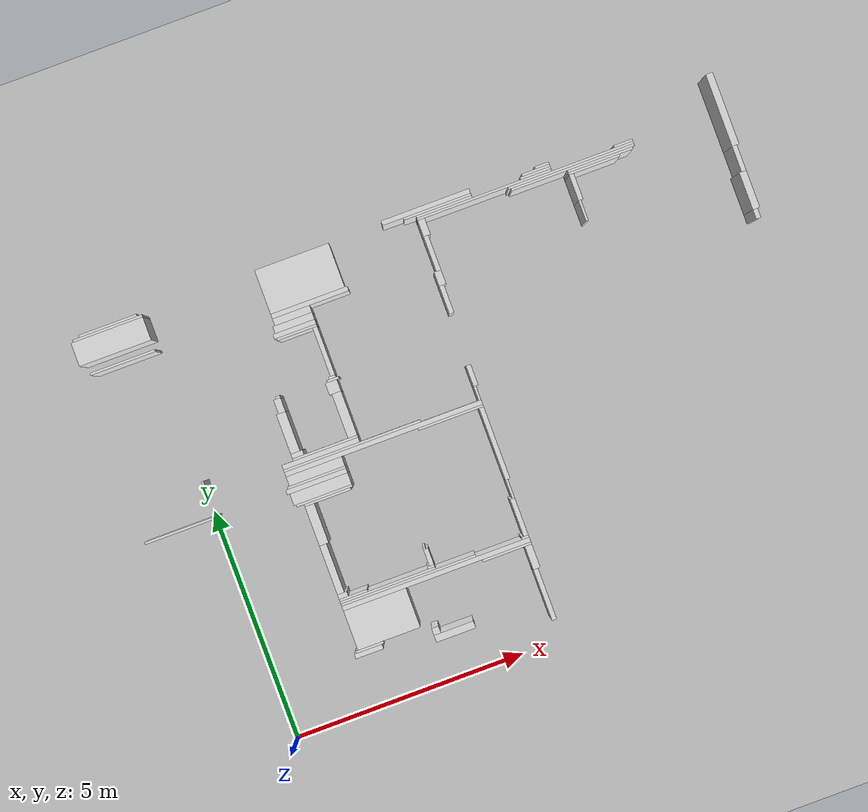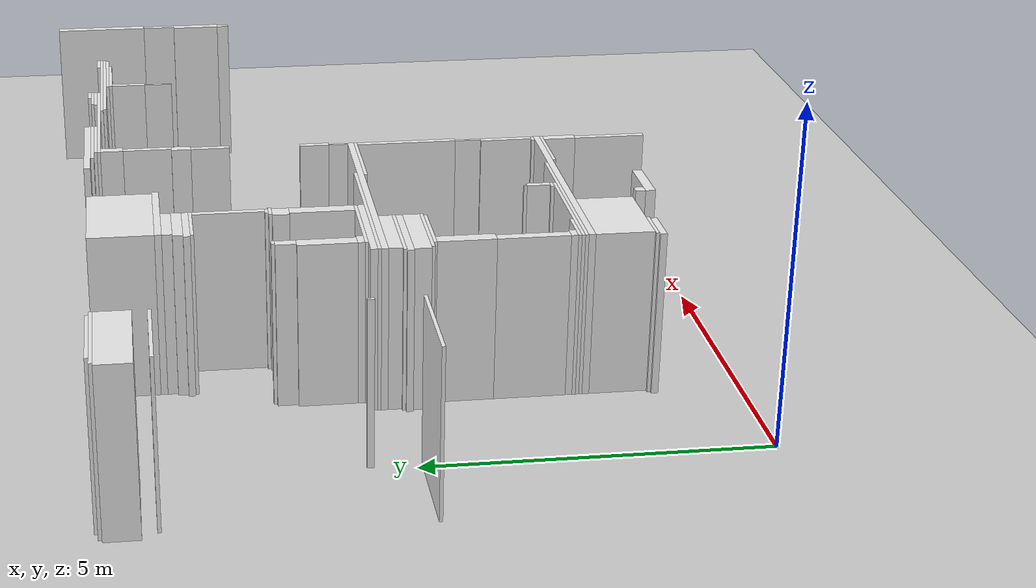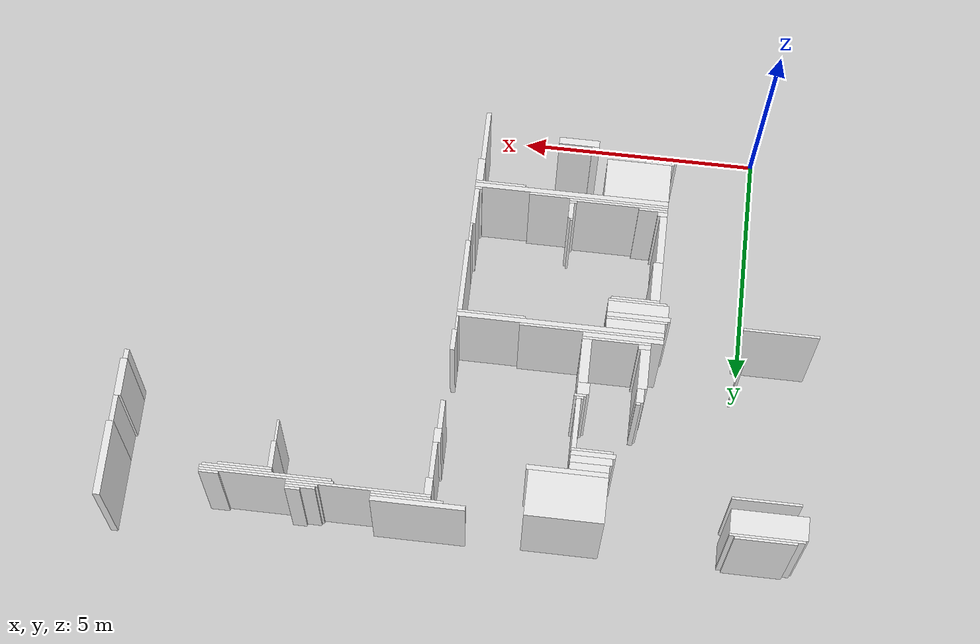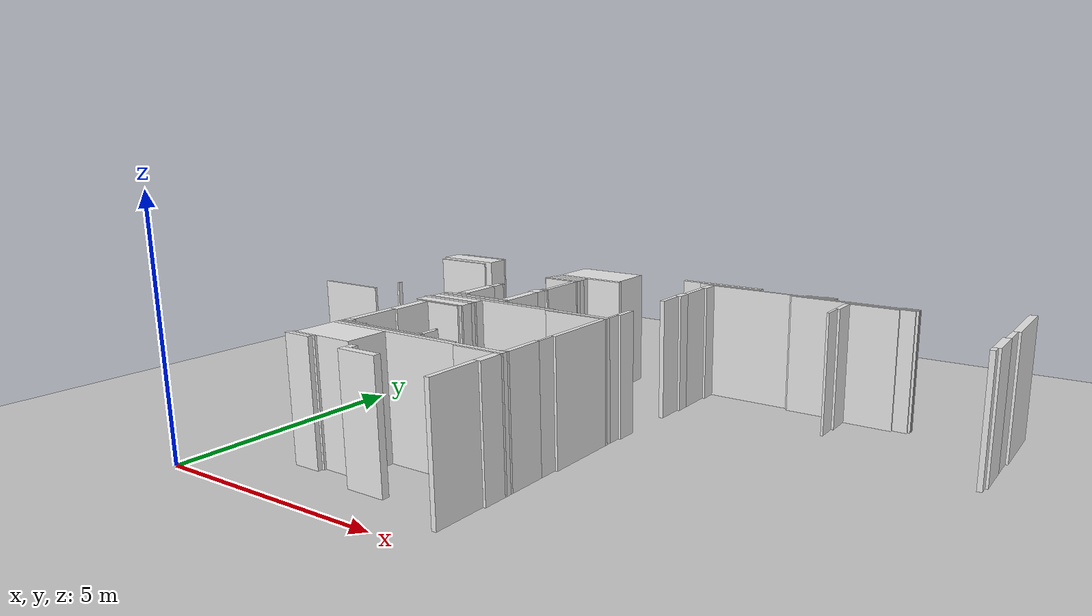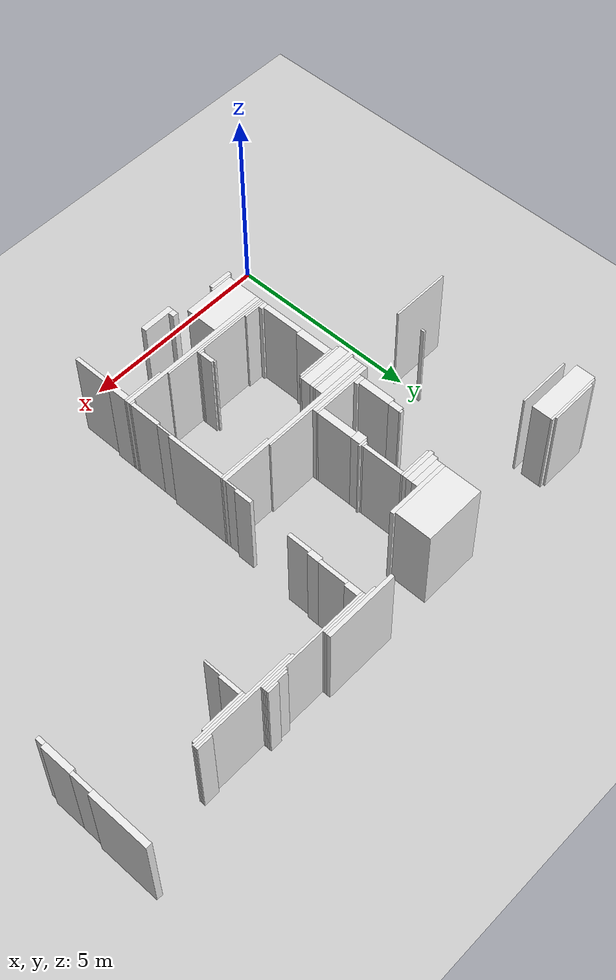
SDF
<sdf version="1.7">
 <world name="occupancy_map_world">
  <model name="ground_plane">
   <static>true</static>
   <link name="link">
    <collision name="collision">
     <geometry><plane><normal>0 0 1</normal><size>32.46 49.62000000000001</size></plane></geometry>
    </collision>
    <visual name="visual">
     <geometry><plane><normal>0 0 1</normal><size>32.46 49.62000000000001</size></plane></geometry>
     <material>
      <script><uri>file://media/materials/scripts/gazebo.material</uri><name>Gazebo/Grey</name></script>
     </material>
    </visual>
   </link>
  </model>
  <model name="wall_258">
   <static>true</static>
   <pose>12.600000000000001 9.100000000000001 1.25 0 0 0.0</pose>
   <link name="link">
    <collision name="collision">
     <geometry><box><size>0.15000000000000002 1.55 2.5</size></box></geometry>
    </collision>
    <visual name="visual">
     <geometry><box><size>0.15000000000000002 1.55 2.5</size></box></geometry>
     <material>
      <script><uri>file://media/materials/scripts/gazebo.material</uri><name>Gazebo/White</name></script>
     </material>
    </visual>
   </link>
  </model>
  <model name="wall_276">
   <static>true</static>
   <pose>6.275000000000002 9.325000000000003 1.25 0 0 0.0</pose>
   <link name="link">
    <collision name="collision">
     <geometry><box><size>1.9000000000000001 0.1 2.5</size></box></geometry>
    </collision>
    <visual name="visual">
     <geometry><box><size>1.9000000000000001 0.1 2.5</size></box></geometry>
     <material>
      <script><uri>file://media/materials/scripts/gazebo.material</uri><name>Gazebo/White</name></script>
     </material>
    </visual>
   </link>
  </model>
  <model name="wall_277">
   <static>true</static>
   <pose>-0.5999999999999979 9.3 1.25 0 0 0.0</pose>
   <link name="link">
    <collision name="collision"><geometry><box><size>1.25 0.05 2.5</size></box></geometry></collision>
    <visual name="visual">
     <geometry><box><size>1.25 0.05 2.5</size></box></geometry>
     <material>
      <script><uri>file://media/materials/scripts/gazebo.material</uri><name>Gazebo/White</name></script>
     </material>
    </visual>
   </link>
  </model>
  <model name="wall_278">
   <static>true</static>
   <pose>3.3750000000000036 8.850000000000001 1.25 0 0 0.0</pose>
   <link name="link">
    <collision name="collision">
     <geometry><box><size>1.6 0.9500000000000001 2.5</size></box></geometry>
    </collision>
    <visual name="visual">
     <geometry><box><size>1.6 0.9500000000000001 2.5</size></box></geometry>
     <material>
      <script><uri>file://media/materials/scripts/gazebo.material</uri><name>Gazebo/White</name></script>
     </material>
    </visual>
   </link>
  </model>
  <model name="wall_279">
   <static>true</static>
   <pose>8.775000000000002 9.3 1.25 0 0 0.0</pose>
   <link name="link">
    <collision name="collision">
     <geometry><box><size>0.30000000000000004 0.05 2.5</size></box></geometry>
    </collision>
    <visual name="visual">
     <geometry><box><size>0.30000000000000004 0.05 2.5</size></box></geometry>
     <material>
      <script><uri>file://media/materials/scripts/gazebo.material</uri><name>Gazebo/White</name></script>
     </material>
    </visual>
   </link>
  </model>
  <model name="wall_281">
   <static>true</static>
   <pose>-0.6249999999999964 9.25 1.25 0 0 0.0</pose>
   <link name="link">
    <collision name="collision"><geometry><box><size>1.5 0.05 2.5</size></box></geometry></collision>
    <visual name="visual">
     <geometry><box><size>1.5 0.05 2.5</size></box></geometry>
     <material>
      <script><uri>file://media/materials/scripts/gazebo.material</uri><name>Gazebo/White</name></script>
     </material>
    </visual>
   </link>
  </model>
  <model name="wall_282">
   <static>true</static>
   <pose>6.5000000000000036 9.25 1.25 0 0 0.0</pose>
   <link name="link">
    <collision name="collision">
     <geometry><box><size>1.4500000000000002 0.05 2.5</size></box></geometry>
    </collision>
    <visual name="visual">
     <geometry><box><size>1.4500000000000002 0.05 2.5</size></box></geometry>
     <material>
      <script><uri>file://media/materials/scripts/gazebo.material</uri><name>Gazebo/White</name></script>
     </material>
    </visual>
   </link>
  </model>
  <model name="wall_283">
   <static>true</static>
   <pose>8.625000000000004 9.25 1.25 0 0 0.0</pose>
   <link name="link">
    <collision name="collision">
     <geometry><box><size>0.6000000000000001 0.05 2.5</size></box></geometry>
    </collision>
    <visual name="visual">
     <geometry><box><size>0.6000000000000001 0.05 2.5</size></box></geometry>
     <material>
      <script><uri>file://media/materials/scripts/gazebo.material</uri><name>Gazebo/White</name></script>
     </material>
    </visual>
   </link>
  </model>
  <model name="wall_284">
   <static>true</static>
   <pose>-0.6499999999999986 8.975000000000001 1.25 0 0 0.0</pose>
   <link name="link">
    <collision name="collision"><geometry><box><size>1.55 0.5 2.5</size></box></geometry></collision>
    <visual name="visual">
     <geometry><box><size>1.55 0.5 2.5</size></box></geometry>
     <material>
      <script><uri>file://media/materials/scripts/gazebo.material</uri><name>Gazebo/White</name></script>
     </material>
    </visual>
   </link>
  </model>
  <model name="wall_285">
   <static>true</static>
   <pose>-0.6499999999999986 4.900000000000002 1.25 0 0 0.0</pose>
   <link name="link">
    <collision name="collision"><geometry><box><size>1.55 0.05 2.5</size></box></geometry></collision>
    <visual name="visual">
     <geometry><box><size>1.55 0.05 2.5</size></box></geometry>
     <material>
      <script><uri>file://media/materials/scripts/gazebo.material</uri><name>Gazebo/White</name></script>
     </material>
    </visual>
   </link>
  </model>
  <model name="wall_286">
   <static>true</static>
   <pose>6.6250000000000036 9.200000000000003 1.25 0 0 0.0</pose>
   <link name="link">
    <collision name="collision">
     <geometry><box><size>1.2000000000000002 0.05 2.5</size></box></geometry>
    </collision>
    <visual name="visual">
     <geometry><box><size>1.2000000000000002 0.05 2.5</size></box></geometry>
     <material>
      <script><uri>file://media/materials/scripts/gazebo.material</uri><name>Gazebo/White</name></script>
     </material>
    </visual>
   </link>
  </model>
  <model name="wall_287">
   <static>true</static>
   <pose>8.600000000000001 9.200000000000003 1.25 0 0 0.0</pose>
   <link name="link">
    <collision name="collision"><geometry><box><size>0.65 0.05 2.5</size></box></geometry></collision>
    <visual name="visual">
     <geometry><box><size>0.65 0.05 2.5</size></box></geometry>
     <material>
      <script><uri>file://media/materials/scripts/gazebo.material</uri><name>Gazebo/White</name></script>
     </material>
    </visual>
   </link>
  </model>
  <model name="wall_288">
   <static>true</static>
   <pose>7.475000000000001 9.150000000000002 1.25 0 0 0.0</pose>
   <link name="link">
    <collision name="collision">
     <geometry><box><size>2.9000000000000004 0.05 2.5</size></box></geometry>
    </collision>
    <visual name="visual">
     <geometry><box><size>2.9000000000000004 0.05 2.5</size></box></geometry>
     <material>
      <script><uri>file://media/materials/scripts/gazebo.material</uri><name>Gazebo/White</name></script>
     </material>
    </visual>
   </link>
  </model>
  <model name="wall_289">
   <static>true</static>
   <pose>10.475000000000001 9.150000000000002 1.25 0 0 0.0</pose>
   <link name="link">
    <collision name="collision"><geometry><box><size>0.4 0.05 2.5</size></box></geometry></collision>
    <visual name="visual">
     <geometry><box><size>0.4 0.05 2.5</size></box></geometry>
     <material>
      <script><uri>file://media/materials/scripts/gazebo.material</uri><name>Gazebo/White</name></script>
     </material>
    </visual>
   </link>
  </model>
  <model name="wall_290">
   <static>true</static>
   <pose>6.100000000000001 8.950000000000003 1.25 0 0 0.0</pose>
   <link name="link">
    <collision name="collision">
     <geometry><box><size>0.15000000000000002 0.35000000000000003 2.5</size></box></geometry>
    </collision>
    <visual name="visual">
     <geometry><box><size>0.15000000000000002 0.35000000000000003 2.5</size></box></geometry>
     <material>
      <script><uri>file://media/materials/scripts/gazebo.material</uri><name>Gazebo/White</name></script>
     </material>
    </visual>
   </link>
  </model>
  <model name="wall_291">
   <static>true</static>
   <pose>9.325000000000003 9.100000000000001 1.25 0 0 0.0</pose>
   <link name="link">
    <collision name="collision"><geometry><box><size>2.7 0.05 2.5</size></box></geometry></collision>
    <visual name="visual">
     <geometry><box><size>2.7 0.05 2.5</size></box></geometry>
     <material>
      <script><uri>file://media/materials/scripts/gazebo.material</uri><name>Gazebo/White</name></script>
     </material>
    </visual>
   </link>
  </model>
  <model name="wall_292">
   <static>true</static>
   <pose>9.350000000000001 9.05 1.25 0 0 0.0</pose>
   <link name="link">
    <collision name="collision">
     <geometry><box><size>2.6500000000000004 0.05 2.5</size></box></geometry>
    </collision>
    <visual name="visual">
     <geometry><box><size>2.6500000000000004 0.05 2.5</size></box></geometry>
     <material>
      <script><uri>file://media/materials/scripts/gazebo.material</uri><name>Gazebo/White</name></script>
     </material>
    </visual>
   </link>
  </model>
  <model name="wall_293">
   <static>true</static>
   <pose>9.925000000000004 9.0 1.25 0 0 0.0</pose>
   <link name="link">
    <collision name="collision">
     <geometry><box><size>1.4000000000000001 0.05 2.5</size></box></geometry>
    </collision>
    <visual name="visual">
     <geometry><box><size>1.4000000000000001 0.05 2.5</size></box></geometry>
     <material>
      <script><uri>file://media/materials/scripts/gazebo.material</uri><name>Gazebo/White</name></script>
     </material>
    </visual>
   </link>
  </model>
  <model name="wall_294">
   <static>true</static>
   <pose>9.775000000000002 8.950000000000003 1.25 0 0 0.0</pose>
   <link name="link">
    <collision name="collision"><geometry><box><size>1.1 0.05 2.5</size></box></geometry></collision>
    <visual name="visual">
     <geometry><box><size>1.1 0.05 2.5</size></box></geometry>
     <material>
      <script><uri>file://media/materials/scripts/gazebo.material</uri><name>Gazebo/White</name></script>
     </material>
    </visual>
   </link>
  </model>
  <model name="wall_295">
   <static>true</static>
   <pose>9.275000000000002 8.650000000000002 1.25 0 0 0.0</pose>
   <link name="link">
    <collision name="collision"><geometry><box><size>0.1 0.55 2.5</size></box></geometry></collision>
    <visual name="visual">
     <geometry><box><size>0.1 0.55 2.5</size></box></geometry>
     <material>
      <script><uri>file://media/materials/scripts/gazebo.material</uri><name>Gazebo/White</name></script>
     </material>
    </visual>
   </link>
  </model>
  <model name="wall_296">
   <static>true</static>
   <pose>6.075000000000003 8.400000000000002 1.25 0 0 0.0</pose>
   <link name="link">
    <collision name="collision"><geometry><box><size>0.1 0.75 2.5</size></box></geometry></collision>
    <visual name="visual">
     <geometry><box><size>0.1 0.75 2.5</size></box></geometry>
     <material>
      <script><uri>file://media/materials/scripts/gazebo.material</uri><name>Gazebo/White</name></script>
     </material>
    </visual>
   </link>
  </model>
  <model name="wall_300">
   <static>true</static>
   <pose>-0.5749999999999993 8.5 1.25 0 0 0.0</pose>
   <link name="link">
    <collision name="collision">
     <geometry><box><size>1.4000000000000001 0.05 2.5</size></box></geometry>
    </collision>
    <visual name="visual">
     <geometry><box><size>1.4000000000000001 0.05 2.5</size></box></geometry>
     <material>
      <script><uri>file://media/materials/scripts/gazebo.material</uri><name>Gazebo/White</name></script>
     </material>
    </visual>
   </link>
  </model>
  <model name="wall_302">
   <static>true</static>
   <pose>3.400000000000002 8.325000000000003 1.25 0 0 0.0</pose>
   <link name="link">
    <collision name="collision">
     <geometry><box><size>1.6500000000000001 0.1 2.5</size></box></geometry>
    </collision>
    <visual name="visual">
     <geometry><box><size>1.6500000000000001 0.1 2.5</size></box></geometry>
     <material>
      <script><uri>file://media/materials/scripts/gazebo.material</uri><name>Gazebo/White</name></script>
     </material>
    </visual>
   </link>
  </model>
  <model name="wall_303">
   <static>true</static>
   <pose>9.250000000000004 8.150000000000002 1.25 0 0 0.0</pose>
   <link name="link">
    <collision name="collision"><geometry><box><size>0.05 0.45 2.5</size></box></geometry></collision>
    <visual name="visual">
     <geometry><box><size>0.05 0.45 2.5</size></box></geometry>
     <material>
      <script><uri>file://media/materials/scripts/gazebo.material</uri><name>Gazebo/White</name></script>
     </material>
    </visual>
   </link>
  </model>
  <model name="wall_304">
   <static>true</static>
   <pose>12.575000000000003 8.05 1.25 0 0 0.0</pose>
   <link name="link">
    <collision name="collision"><geometry><box><size>0.1 0.55 2.5</size></box></geometry></collision>
    <visual name="visual">
     <geometry><box><size>0.1 0.55 2.5</size></box></geometry>
     <material>
      <script><uri>file://media/materials/scripts/gazebo.material</uri><name>Gazebo/White</name></script>
     </material>
    </visual>
   </link>
  </model>
  <model name="wall_305">
   <static>true</static>
   <pose>2.9750000000000014 8.200000000000003 1.25 0 0 0.0</pose>
   <link name="link">
    <collision name="collision">
     <geometry><box><size>0.8 0.15000000000000002 2.5</size></box></geometry>
    </collision>
    <visual name="visual">
     <geometry><box><size>0.8 0.15000000000000002 2.5</size></box></geometry>
     <material>
      <script><uri>file://media/materials/scripts/gazebo.material</uri><name>Gazebo/White</name></script>
     </material>
    </visual>
   </link>
  </model>
  <model name="wall_306">
   <static>true</static>
   <pose>2.950000000000003 8.05 1.25 0 0 0.0</pose>
   <link name="link">
    <collision name="collision">
     <geometry><box><size>0.8500000000000001 0.15000000000000002 2.5</size></box></geometry>
    </collision>
    <visual name="visual">
     <geometry><box><size>0.8500000000000001 0.15000000000000002 2.5</size></box></geometry>
     <material>
      <script><uri>file://media/materials/scripts/gazebo.material</uri><name>Gazebo/White</name></script>
     </material>
    </visual>
   </link>
  </model>
  <model name="wall_307">
   <static>true</static>
   <pose>2.950000000000003 7.850000000000001 1.25 0 0 0.0</pose>
   <link name="link">
    <collision name="collision">
     <geometry><box><size>0.8500000000000001 0.05 2.5</size></box></geometry>
    </collision>
    <visual name="visual">
     <geometry><box><size>0.8500000000000001 0.05 2.5</size></box></geometry>
     <material>
      <script><uri>file://media/materials/scripts/gazebo.material</uri><name>Gazebo/White</name></script>
     </material>
    </visual>
   </link>
  </model>
  <model name="wall_310">
   <static>true</static>
   <pose>6.050000000000004 7.875 1.25 0 0 0.0</pose>
   <link name="link">
    <collision name="collision">
     <geometry><box><size>0.15000000000000002 0.30000000000000004 2.5</size></box></geometry>
    </collision>
    <visual name="visual">
     <geometry><box><size>0.15000000000000002 0.30000000000000004 2.5</size></box></geometry>
     <material>
      <script><uri>file://media/materials/scripts/gazebo.material</uri><name>Gazebo/White</name></script>
     </material>
    </visual>
   </link>
  </model>
  <model name="wall_312">
   <static>true</static>
   <pose>2.9250000000000043 7.925000000000001 1.25 0 0 0.0</pose>
   <link name="link">
    <collision name="collision"><geometry><box><size>0.9 0.1 2.5</size></box></geometry></collision>
    <visual name="visual">
     <geometry><box><size>0.9 0.1 2.5</size></box></geometry>
     <material>
      <script><uri>file://media/materials/scripts/gazebo.material</uri><name>Gazebo/White</name></script>
     </material>
    </visual>
   </link>
  </model>
  <model name="wall_316">
   <static>true</static>
   <pose>3.325000000000003 7.300000000000001 1.25 0 0 0.0</pose>
   <link name="link">
    <collision name="collision"><geometry><box><size>0.1 1.05 2.5</size></box></geometry></collision>
    <visual name="visual">
     <geometry><box><size>0.1 1.05 2.5</size></box></geometry>
     <material>
      <script><uri>file://media/materials/scripts/gazebo.material</uri><name>Gazebo/White</name></script>
     </material>
    </visual>
   </link>
  </model>
  <model name="wall_318">
   <static>true</static>
   <pose>12.550000000000004 7.375 1.25 0 0 0.0</pose>
   <link name="link">
    <collision name="collision">
     <geometry><box><size>0.15000000000000002 0.8 2.5</size></box></geometry>
    </collision>
    <visual name="visual">
     <geometry><box><size>0.15000000000000002 0.8 2.5</size></box></geometry>
     <material>
      <script><uri>file://media/materials/scripts/gazebo.material</uri><name>Gazebo/White</name></script>
     </material>
    </visual>
   </link>
  </model>
  <model name="wall_320">
   <static>true</static>
   <pose>6.025000000000002 7.425000000000001 1.25 0 0 0.0</pose>
   <link name="link">
    <collision name="collision">
     <geometry><box><size>0.1 0.6000000000000001 2.5</size></box></geometry>
    </collision>
    <visual name="visual">
     <geometry><box><size>0.1 0.6000000000000001 2.5</size></box></geometry>
     <material>
      <script><uri>file://media/materials/scripts/gazebo.material</uri><name>Gazebo/White</name></script>
     </material>
    </visual>
   </link>
  </model>
  <model name="wall_321">
   <static>true</static>
   <pose>12.525000000000002 6.875 1.25 0 0 0.0</pose>
   <link name="link">
    <collision name="collision"><geometry><box><size>0.1 0.2 2.5</size></box></geometry></collision>
    <visual name="visual">
     <geometry><box><size>0.1 0.2 2.5</size></box></geometry>
     <material>
      <script><uri>file://media/materials/scripts/gazebo.material</uri><name>Gazebo/White</name></script>
     </material>
    </visual>
   </link>
  </model>
  <model name="wall_324">
   <static>true</static>
   <pose>2.1250000000000036 6.75 1.25 0 0 0.0</pose>
   <link name="link">
    <collision name="collision"><geometry><box><size>0.1 0.05 2.5</size></box></geometry></collision>
    <visual name="visual">
     <geometry><box><size>0.1 0.05 2.5</size></box></geometry>
     <material>
      <script><uri>file://media/materials/scripts/gazebo.material</uri><name>Gazebo/White</name></script>
     </material>
    </visual>
   </link>
  </model>
  <model name="wall_325">
   <static>true</static>
   <pose>3.3000000000000043 6.75 1.25 0 0 0.0</pose>
   <link name="link">
    <collision name="collision">
     <geometry><box><size>0.15000000000000002 0.05 2.5</size></box></geometry>
    </collision>
    <visual name="visual">
     <geometry><box><size>0.15000000000000002 0.05 2.5</size></box></geometry>
     <material>
      <script><uri>file://media/materials/scripts/gazebo.material</uri><name>Gazebo/White</name></script>
     </material>
    </visual>
   </link>
  </model>
  <model name="wall_326">
   <static>true</static>
   <pose>2.1000000000000014 6.575000000000003 1.25 0 0 0.0</pose>
   <link name="link">
    <collision name="collision">
     <geometry><box><size>0.15000000000000002 0.30000000000000004 2.5</size></box></geometry>
    </collision>
    <visual name="visual">
     <geometry><box><size>0.15000000000000002 0.30000000000000004 2.5</size></box></geometry>
     <material>
      <script><uri>file://media/materials/scripts/gazebo.material</uri><name>Gazebo/White</name></script>
     </material>
    </visual>
   </link>
  </model>
  <model name="wall_328">
   <static>true</static>
   <pose>3.3000000000000043 6.700000000000003 1.25 0 0 0.0</pose>
   <link name="link">
    <collision name="collision"><geometry><box><size>0.25 0.05 2.5</size></box></geometry></collision>
    <visual name="visual">
     <geometry><box><size>0.25 0.05 2.5</size></box></geometry>
     <material>
      <script><uri>file://media/materials/scripts/gazebo.material</uri><name>Gazebo/White</name></script>
     </material>
    </visual>
   </link>
  </model>
  <model name="wall_329">
   <static>true</static>
   <pose>3.2500000000000036 6.550000000000001 1.25 0 0 0.0</pose>
   <link name="link">
    <collision name="collision"><geometry><box><size>0.25 0.25 2.5</size></box></geometry></collision>
    <visual name="visual">
     <geometry><box><size>0.25 0.25 2.5</size></box></geometry>
     <material>
      <script><uri>file://media/materials/scripts/gazebo.material</uri><name>Gazebo/White</name></script>
     </material>
    </visual>
   </link>
  </model>
  <model name="wall_330">
   <static>true</static>
   <pose>2.075000000000003 6.0 1.25 0 0 0.0</pose>
   <link name="link">
    <collision name="collision">
     <geometry><box><size>0.2 0.8500000000000001 2.5</size></box></geometry>
    </collision>
    <visual name="visual">
     <geometry><box><size>0.2 0.8500000000000001 2.5</size></box></geometry>
     <material>
      <script><uri>file://media/materials/scripts/gazebo.material</uri><name>Gazebo/White</name></script>
     </material>
    </visual>
   </link>
  </model>
  <model name="wall_331">
   <static>true</static>
   <pose>3.275000000000002 5.950000000000003 1.25 0 0 0.0</pose>
   <link name="link">
    <collision name="collision">
     <geometry><box><size>0.2 0.9500000000000001 2.5</size></box></geometry>
    </collision>
    <visual name="visual">
     <geometry><box><size>0.2 0.9500000000000001 2.5</size></box></geometry>
     <material>
      <script><uri>file://media/materials/scripts/gazebo.material</uri><name>Gazebo/White</name></script>
     </material>
    </visual>
   </link>
  </model>
  <model name="wall_335">
   <static>true</static>
   <pose>5.975000000000001 5.800000000000001 1.25 0 0 0.0</pose>
   <link name="link">
    <collision name="collision"><geometry><box><size>0.1 0.45 2.5</size></box></geometry></collision>
    <visual name="visual">
     <geometry><box><size>0.1 0.45 2.5</size></box></geometry>
     <material>
      <script><uri>file://media/materials/scripts/gazebo.material</uri><name>Gazebo/White</name></script>
     </material>
    </visual>
   </link>
  </model>
  <model name="wall_341">
   <static>true</static>
   <pose>0.10000000000000142 5.625 1.25 0 0 0.0</pose>
   <link name="link">
    <collision name="collision"><geometry><box><size>0.05 0.1 2.5</size></box></geometry></collision>
    <visual name="visual">
     <geometry><box><size>0.05 0.1 2.5</size></box></geometry>
     <material>
      <script><uri>file://media/materials/scripts/gazebo.material</uri><name>Gazebo/White</name></script>
     </material>
    </visual>
   </link>
  </model>
  <model name="wall_345">
   <static>true</static>
   <pose>2.1000000000000014 5.525000000000002 1.25 0 0 0.0</pose>
   <link name="link">
    <collision name="collision"><geometry><box><size>0.25 0.1 2.5</size></box></geometry></collision>
    <visual name="visual">
     <geometry><box><size>0.25 0.1 2.5</size></box></geometry>
     <material>
      <script><uri>file://media/materials/scripts/gazebo.material</uri><name>Gazebo/White</name></script>
     </material>
    </visual>
   </link>
  </model>
  <model name="wall_347">
   <static>true</static>
   <pose>5.950000000000003 5.425000000000001 1.25 0 0 0.0</pose>
   <link name="link">
    <collision name="collision">
     <geometry><box><size>0.05 0.30000000000000004 2.5</size></box></geometry>
    </collision>
    <visual name="visual">
     <geometry><box><size>0.05 0.30000000000000004 2.5</size></box></geometry>
     <material>
      <script><uri>file://media/materials/scripts/gazebo.material</uri><name>Gazebo/White</name></script>
     </material>
    </visual>
   </link>
  </model>
  <model name="wall_348">
   <static>true</static>
   <pose>2.6750000000000043 5.450000000000003 1.25 0 0 0.0</pose>
   <link name="link">
    <collision name="collision">
     <geometry><box><size>1.4000000000000001 0.05 2.5</size></box></geometry>
    </collision>
    <visual name="visual">
     <geometry><box><size>1.4000000000000001 0.05 2.5</size></box></geometry>
     <material>
      <script><uri>file://media/materials/scripts/gazebo.material</uri><name>Gazebo/White</name></script>
     </material>
    </visual>
   </link>
  </model>
  <model name="wall_350">
   <static>true</static>
   <pose>2.5500000000000043 5.375 1.25 0 0 0.0</pose>
   <link name="link">
    <collision name="collision">
     <geometry><box><size>1.6500000000000001 0.1 2.5</size></box></geometry>
    </collision>
    <visual name="visual">
     <geometry><box><size>1.6500000000000001 0.1 2.5</size></box></geometry>
     <material>
      <script><uri>file://media/materials/scripts/gazebo.material</uri><name>Gazebo/White</name></script>
     </material>
    </visual>
   </link>
  </model>
  <model name="wall_352">
   <static>true</static>
   <pose>3.200000000000003 5.300000000000001 1.25 0 0 0.0</pose>
   <link name="link">
    <collision name="collision"><geometry><box><size>2.95 0.05 2.5</size></box></geometry></collision>
    <visual name="visual">
     <geometry><box><size>2.95 0.05 2.5</size></box></geometry>
     <material>
      <script><uri>file://media/materials/scripts/gazebo.material</uri><name>Gazebo/White</name></script>
     </material>
    </visual>
   </link>
  </model>
  <model name="wall_353">
   <static>true</static>
   <pose>3.8500000000000014 5.225000000000001 1.25 0 0 0.0</pose>
   <link name="link">
    <collision name="collision"><geometry><box><size>4.25 0.1 2.5</size></box></geometry></collision>
    <visual name="visual">
     <geometry><box><size>4.25 0.1 2.5</size></box></geometry>
     <material>
      <script><uri>file://media/materials/scripts/gazebo.material</uri><name>Gazebo/White</name></script>
     </material>
    </visual>
   </link>
  </model>
  <model name="wall_356">
   <static>true</static>
   <pose>2.325000000000003 5.075000000000003 1.25 0 0 0.0</pose>
   <link name="link">
    <collision name="collision">
     <geometry><box><size>1.2000000000000002 0.2 2.5</size></box></geometry>
    </collision>
    <visual name="visual">
     <geometry><box><size>1.2000000000000002 0.2 2.5</size></box></geometry>
     <material>
      <script><uri>file://media/materials/scripts/gazebo.material</uri><name>Gazebo/White</name></script>
     </material>
    </visual>
   </link>
  </model>
  <model name="wall_357">
   <static>true</static>
   <pose>2.325000000000003 4.550000000000001 1.25 0 0 0.0</pose>
   <link name="link">
    <collision name="collision">
     <geometry><box><size>1.2000000000000002 0.05 2.5</size></box></geometry>
    </collision>
    <visual name="visual">
     <geometry><box><size>1.2000000000000002 0.05 2.5</size></box></geometry>
     <material>
      <script><uri>file://media/materials/scripts/gazebo.material</uri><name>Gazebo/White</name></script>
     </material>
    </visual>
   </link>
  </model>
  <model name="wall_358">
   <static>true</static>
   <pose>5.275000000000002 5.150000000000002 1.25 0 0 0.0</pose>
   <link name="link">
    <collision name="collision">
     <geometry><box><size>1.4000000000000001 0.05 2.5</size></box></geometry>
    </collision>
    <visual name="visual">
     <geometry><box><size>1.4000000000000001 0.05 2.5</size></box></geometry>
     <material>
      <script><uri>file://media/materials/scripts/gazebo.material</uri><name>Gazebo/White</name></script>
     </material>
    </visual>
   </link>
  </model>
  <model name="wall_359">
   <static>true</static>
   <pose>5.925000000000004 4.350000000000001 1.25 0 0 0.0</pose>
   <link name="link">
    <collision name="collision"><geometry><box><size>0.1 1.55 2.5</size></box></geometry></collision>
    <visual name="visual">
     <geometry><box><size>0.1 1.55 2.5</size></box></geometry>
     <material>
      <script><uri>file://media/materials/scripts/gazebo.material</uri><name>Gazebo/White</name></script>
     </material>
    </visual>
   </link>
  </model>
  <model name="wall_362">
   <static>true</static>
   <pose>2.3000000000000043 4.950000000000003 1.25 0 0 0.0</pose>
   <link name="link">
    <collision name="collision"><geometry><box><size>1.25 0.05 2.5</size></box></geometry></collision>
    <visual name="visual">
     <geometry><box><size>1.25 0.05 2.5</size></box></geometry>
     <material>
      <script><uri>file://media/materials/scripts/gazebo.material</uri><name>Gazebo/White</name></script>
     </material>
    </visual>
   </link>
  </model>
  <model name="wall_363">
   <static>true</static>
   <pose>2.3000000000000043 4.700000000000003 1.25 0 0 0.0</pose>
   <link name="link">
    <collision name="collision"><geometry><box><size>1.25 0.25 2.5</size></box></geometry></collision>
    <visual name="visual">
     <geometry><box><size>1.25 0.25 2.5</size></box></geometry>
     <material>
      <script><uri>file://media/materials/scripts/gazebo.material</uri><name>Gazebo/White</name></script>
     </material>
    </visual>
   </link>
  </model>
  <model name="wall_364">
   <static>true</static>
   <pose>2.275000000000002 4.875 1.25 0 0 0.0</pose>
   <link name="link">
    <collision name="collision"><geometry><box><size>1.3 0.1 2.5</size></box></geometry></collision>
    <visual name="visual">
     <geometry><box><size>1.3 0.1 2.5</size></box></geometry>
     <material>
      <script><uri>file://media/materials/scripts/gazebo.material</uri><name>Gazebo/White</name></script>
     </material>
    </visual>
   </link>
  </model>
  <model name="wall_368">
   <static>true</static>
   <pose>2.3750000000000036 4.5 1.25 0 0 0.0</pose>
   <link name="link">
    <collision name="collision"><geometry><box><size>1.0 0.05 2.5</size></box></geometry></collision>
    <visual name="visual">
     <geometry><box><size>1.0 0.05 2.5</size></box></geometry>
     <material>
      <script><uri>file://media/materials/scripts/gazebo.material</uri><name>Gazebo/White</name></script>
     </material>
    </visual>
   </link>
  </model>
  <model name="wall_369">
   <static>true</static>
   <pose>1.9750000000000014 4.050000000000001 1.25 0 0 0.0</pose>
   <link name="link">
    <collision name="collision">
     <geometry><box><size>0.2 0.8500000000000001 2.5</size></box></geometry>
    </collision>
    <visual name="visual">
     <geometry><box><size>0.2 0.8500000000000001 2.5</size></box></geometry>
     <material>
      <script><uri>file://media/materials/scripts/gazebo.material</uri><name>Gazebo/White</name></script>
     </material>
    </visual>
   </link>
  </model>
  <model name="wall_370">
   <static>true</static>
   <pose>1.9750000000000014 2.525000000000002 1.25 0 0 0.0</pose>
   <link name="link">
    <collision name="collision"><geometry><box><size>0.2 0.1 2.5</size></box></geometry></collision>
    <visual name="visual">
     <geometry><box><size>0.2 0.1 2.5</size></box></geometry>
     <material>
      <script><uri>file://media/materials/scripts/gazebo.material</uri><name>Gazebo/White</name></script>
     </material>
    </visual>
   </link>
  </model>
  <model name="wall_374">
   <static>true</static>
   <pose>1.9500000000000028 3.1000000000000014 1.25 0 0 0.0</pose>
   <link name="link">
    <collision name="collision">
     <geometry><box><size>0.15000000000000002 1.05 2.5</size></box></geometry>
    </collision>
    <visual name="visual">
     <geometry><box><size>0.15000000000000002 1.05 2.5</size></box></geometry>
     <material>
      <script><uri>file://media/materials/scripts/gazebo.material</uri><name>Gazebo/White</name></script>
     </material>
    </visual>
   </link>
  </model>
  <model name="wall_375">
   <static>true</static>
   <pose>5.900000000000002 3.375 1.25 0 0 0.0</pose>
   <link name="link">
    <collision name="collision"><geometry><box><size>0.05 0.4 2.5</size></box></geometry></collision>
    <visual name="visual">
     <geometry><box><size>0.05 0.4 2.5</size></box></geometry>
     <material>
      <script><uri>file://media/materials/scripts/gazebo.material</uri><name>Gazebo/White</name></script>
     </material>
    </visual>
   </link>
  </model>
  <model name="wall_376">
   <static>true</static>
   <pose>5.8750000000000036 2.775000000000002 1.25 0 0 0.0</pose>
   <link name="link">
    <collision name="collision"><geometry><box><size>0.1 0.8 2.5</size></box></geometry></collision>
    <visual name="visual">
     <geometry><box><size>0.1 0.8 2.5</size></box></geometry>
     <material>
      <script><uri>file://media/materials/scripts/gazebo.material</uri><name>Gazebo/White</name></script>
     </material>
    </visual>
   </link>
  </model>
  <model name="wall_377">
   <static>true</static>
   <pose>3.8500000000000014 2.8500000000000014 1.25 0 0 0.0</pose>
   <link name="link">
    <collision name="collision"><geometry><box><size>0.05 0.05 2.5</size></box></geometry></collision>
    <visual name="visual">
     <geometry><box><size>0.05 0.05 2.5</size></box></geometry>
     <material>
      <script><uri>file://media/materials/scripts/gazebo.material</uri><name>Gazebo/White</name></script>
     </material>
    </visual>
   </link>
  </model>
  <model name="wall_378">
   <static>true</static>
   <pose>3.8750000000000036 2.650000000000002 1.25 0 0 0.0</pose>
   <link name="link">
    <collision name="collision">
     <geometry><box><size>0.1 0.35000000000000003 2.5</size></box></geometry>
    </collision>
    <visual name="visual">
     <geometry><box><size>0.1 0.35000000000000003 2.5</size></box></geometry>
     <material>
      <script><uri>file://media/materials/scripts/gazebo.material</uri><name>Gazebo/White</name></script>
     </material>
    </visual>
   </link>
  </model>
  <model name="wall_380">
   <static>true</static>
   <pose>2.1750000000000043 2.450000000000003 1.25 0 0 0.0</pose>
   <link name="link">
    <collision name="collision">
     <geometry><box><size>0.6000000000000001 0.05 2.5</size></box></geometry>
    </collision>
    <visual name="visual">
     <geometry><box><size>0.6000000000000001 0.05 2.5</size></box></geometry>
     <material>
      <script><uri>file://media/materials/scripts/gazebo.material</uri><name>Gazebo/White</name></script>
     </material>
    </visual>
   </link>
  </model>
  <model name="wall_381">
   <static>true</static>
   <pose>3.8500000000000014 2.450000000000003 1.25 0 0 0.0</pose>
   <link name="link">
    <collision name="collision">
     <geometry><box><size>0.15000000000000002 0.05 2.5</size></box></geometry>
    </collision>
    <visual name="visual">
     <geometry><box><size>0.15000000000000002 0.05 2.5</size></box></geometry>
     <material>
      <script><uri>file://media/materials/scripts/gazebo.material</uri><name>Gazebo/White</name></script>
     </material>
    </visual>
   </link>
  </model>
  <model name="wall_384">
   <static>true</static>
   <pose>2.900000000000002 2.400000000000002 1.25 0 0 0.0</pose>
   <link name="link">
    <collision name="collision">
     <geometry><box><size>2.0500000000000003 0.05 2.5</size></box></geometry>
    </collision>
    <visual name="visual">
     <geometry><box><size>2.0500000000000003 0.05 2.5</size></box></geometry>
     <material>
      <script><uri>file://media/materials/scripts/gazebo.material</uri><name>Gazebo/White</name></script>
     </material>
    </visual>
   </link>
  </model>
  <model name="wall_385">
   <static>true</static>
   <pose>3.325000000000003 2.3500000000000014 1.25 0 0 0.0</pose>
   <link name="link">
    <collision name="collision">
     <geometry><box><size>2.9000000000000004 0.05 2.5</size></box></geometry>
    </collision>
    <visual name="visual">
     <geometry><box><size>2.9000000000000004 0.05 2.5</size></box></geometry>
     <material>
      <script><uri>file://media/materials/scripts/gazebo.material</uri><name>Gazebo/White</name></script>
     </material>
    </visual>
   </link>
  </model>
  <model name="wall_386">
   <static>true</static>
   <pose>5.850000000000001 2.3500000000000014 1.25 0 0 0.0</pose>
   <link name="link">
    <collision name="collision">
     <geometry><box><size>0.15000000000000002 0.05 2.5</size></box></geometry>
    </collision>
    <visual name="visual">
     <geometry><box><size>0.15000000000000002 0.05 2.5</size></box></geometry>
     <material>
      <script><uri>file://media/materials/scripts/gazebo.material</uri><name>Gazebo/White</name></script>
     </material>
    </visual>
   </link>
  </model>
  <model name="wall_387">
   <static>true</static>
   <pose>5.850000000000001 1.9250000000000007 1.25 0 0 0.0</pose>
   <link name="link">
    <collision name="collision">
     <geometry><box><size>0.15000000000000002 0.5 2.5</size></box></geometry>
    </collision>
    <visual name="visual">
     <geometry><box><size>0.15000000000000002 0.5 2.5</size></box></geometry>
     <material>
      <script><uri>file://media/materials/scripts/gazebo.material</uri><name>Gazebo/White</name></script>
     </material>
    </visual>
   </link>
  </model>
  <model name="wall_389">
   <static>true</static>
   <pose>3.900000000000002 2.275000000000002 1.25 0 0 0.0</pose>
   <link name="link">
    <collision name="collision"><geometry><box><size>4.05 0.1 2.5</size></box></geometry></collision>
    <visual name="visual">
     <geometry><box><size>4.05 0.1 2.5</size></box></geometry>
     <material>
      <script><uri>file://media/materials/scripts/gazebo.material</uri><name>Gazebo/White</name></script>
     </material>
    </visual>
   </link>
  </model>
  <model name="wall_393">
   <static>true</static>
   <pose>2.5500000000000043 1.8000000000000007 1.25 0 0 0.0</pose>
   <link name="link">
    <collision name="collision">
     <geometry><box><size>1.35 0.8500000000000001 2.5</size></box></geometry>
    </collision>
    <visual name="visual">
     <geometry><box><size>1.35 0.8500000000000001 2.5</size></box></geometry>
     <material>
      <script><uri>file://media/materials/scripts/gazebo.material</uri><name>Gazebo/White</name></script>
     </material>
    </visual>
   </link>
  </model>
  <model name="wall_394">
   <static>true</static>
   <pose>5.400000000000002 2.200000000000003 1.25 0 0 0.0</pose>
   <link name="link">
    <collision name="collision"><geometry><box><size>1.05 0.05 2.5</size></box></geometry></collision>
    <visual name="visual">
     <geometry><box><size>1.05 0.05 2.5</size></box></geometry>
     <material>
      <script><uri>file://media/materials/scripts/gazebo.material</uri><name>Gazebo/White</name></script>
     </material>
    </visual>
   </link>
  </model>
  <model name="wall_405">
   <static>true</static>
   <pose>5.825000000000003 1.125 1.25 0 0 0.0</pose>
   <link name="link">
    <collision name="collision"><geometry><box><size>0.1 1.1 2.5</size></box></geometry></collision>
    <visual name="visual">
     <geometry><box><size>0.1 1.1 2.5</size></box></geometry>
     <material>
      <script><uri>file://media/materials/scripts/gazebo.material</uri><name>Gazebo/White</name></script>
     </material>
    </visual>
   </link>
  </model>
  <model name="wall_409">
   <static>true</static>
   <pose>2.1250000000000036 1.3500000000000014 1.25 0 0 0.0</pose>
   <link name="link">
    <collision name="collision">
     <geometry><box><size>0.6000000000000001 0.05 2.5</size></box></geometry>
    </collision>
    <visual name="visual">
     <geometry><box><size>0.6000000000000001 0.05 2.5</size></box></geometry>
     <material>
      <script><uri>file://media/materials/scripts/gazebo.material</uri><name>Gazebo/White</name></script>
     </material>
    </visual>
   </link>
  </model>
  <model name="wall_412">
   <static>true</static>
   <pose>2.075000000000003 1.2750000000000021 1.25 0 0 0.0</pose>
   <link name="link">
    <collision name="collision">
     <geometry><box><size>0.6000000000000001 0.1 2.5</size></box></geometry>
    </collision>
    <visual name="visual">
     <geometry><box><size>0.6000000000000001 0.1 2.5</size></box></geometry>
     <material>
      <script><uri>file://media/materials/scripts/gazebo.material</uri><name>Gazebo/White</name></script>
     </material>
    </visual>
   </link>
  </model>
  <model name="wall_414">
   <static>true</static>
   <pose>3.5000000000000036 1.2000000000000028 1.25 0 0 0.0</pose>
   <link name="link">
    <collision name="collision">
     <geometry><box><size>0.15000000000000002 0.15000000000000002 2.5</size></box></geometry>
    </collision>
    <visual name="visual">
     <geometry><box><size>0.15000000000000002 0.15000000000000002 2.5</size></box></geometry>
     <material>
      <script><uri>file://media/materials/scripts/gazebo.material</uri><name>Gazebo/White</name></script>
     </material>
    </visual>
   </link>
  </model>
  <model name="wall_420">
   <static>true</static>
   <pose>3.8500000000000014 1.0500000000000007 1.25 0 0 0.0</pose>
   <link name="link">
    <collision name="collision">
     <geometry><box><size>0.8500000000000001 0.15000000000000002 2.5</size></box></geometry>
    </collision>
    <visual name="visual">
     <geometry><box><size>0.8500000000000001 0.15000000000000002 2.5</size></box></geometry>
     <material>
      <script><uri>file://media/materials/scripts/gazebo.material</uri><name>Gazebo/White</name></script>
     </material>
    </visual>
   </link>
  </model>
  <model name="wall_742">
   <static>true</static>
   <pose>0.10000000000000142 5.625 1.25 0 0 0.0</pose>
   <link name="link">
    <collision name="collision"><geometry><box><size>0.05 0.1 2.5</size></box></geometry></collision>
    <visual name="visual">
     <geometry><box><size>0.05 0.1 2.5</size></box></geometry>
     <material>
      <script><uri>file://media/materials/scripts/gazebo.material</uri><name>Gazebo/White</name></script>
     </material>
    </visual>
   </link>
  </model>
  <model name="wall_746">
   <static>true</static>
   <pose>3.8500000000000014 2.8500000000000014 1.25 0 0 0.0</pose>
   <link name="link">
    <collision name="collision"><geometry><box><size>0.05 0.05 2.5</size></box></geometry></collision>
    <visual name="visual">
     <geometry><box><size>0.05 0.05 2.5</size></box></geometry>
     <material>
      <script><uri>file://media/materials/scripts/gazebo.material</uri><name>Gazebo/White</name></script>
     </material>
    </visual>
   </link>
  </model>
  <model name="wall_748">
   <static>true</static>
   <pose>5.900000000000002 3.375 1.25 0 0 0.0</pose>
   <link name="link">
    <collision name="collision"><geometry><box><size>0.05 0.4 2.5</size></box></geometry></collision>
    <visual name="visual">
     <geometry><box><size>0.05 0.4 2.5</size></box></geometry>
     <material>
      <script><uri>file://media/materials/scripts/gazebo.material</uri><name>Gazebo/White</name></script>
     </material>
    </visual>
   </link>
  </model>
  <model name="wall_749">
   <static>true</static>
   <pose>5.950000000000003 5.425000000000001 1.25 0 0 0.0</pose>
   <link name="link">
    <collision name="collision">
     <geometry><box><size>0.05 0.30000000000000004 2.5</size></box></geometry>
    </collision>
    <visual name="visual">
     <geometry><box><size>0.05 0.30000000000000004 2.5</size></box></geometry>
     <material>
      <script><uri>file://media/materials/scripts/gazebo.material</uri><name>Gazebo/White</name></script>
     </material>
    </visual>
   </link>
  </model>
  <model name="wall_754">
   <static>true</static>
   <pose>9.250000000000004 8.150000000000002 1.25 0 0 0.0</pose>
   <link name="link">
    <collision name="collision"><geometry><box><size>0.05 0.45 2.5</size></box></geometry></collision>
    <visual name="visual">
     <geometry><box><size>0.05 0.45 2.5</size></box></geometry>
     <material>
      <script><uri>file://media/materials/scripts/gazebo.material</uri><name>Gazebo/White</name></script>
     </material>
    </visual>
   </link>
  </model>
 </world>
</sdf>
